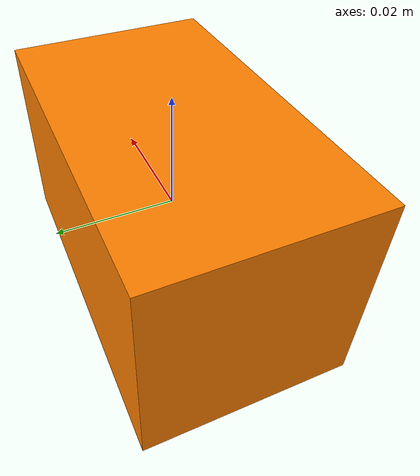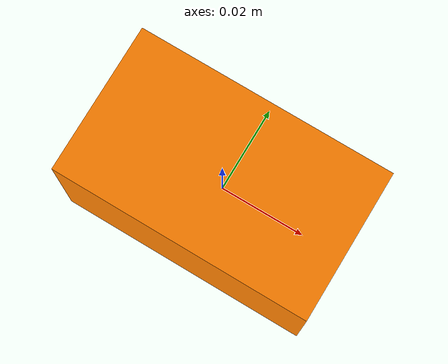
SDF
<?xml version="1.0" ?>
<sdf version='1.6'>
  <model name='Dubin'>
    <link name="DubinLink">
      <pose frame=''>0 0 0 0 0 0</pose>
      <inertial>
        <pose frame='DubinLink'>0 0 0 0 0 0</pose>
        <mass>1.0</mass>
        <inertia>
          <ixx>0.005</ixx>
          <ixy>0.</ixy>
          <ixz>0.0</ixz>
          <iyy>0.006</iyy>
          <izz>0.003</izz>
        </inertia>
      </inertial>
      <collision name='DubinLink_collision'>
        <pose frame=''>0 0 0 0 0 0</pose>
        <geometry>
          <box>
            <size>0.06 0.035 0.035</size>
          </box>
        </geometry>
      </collision>
      <visual name='DubinLink_visual'>
        <pose frame=''>0 0 0 0 0 0</pose>
        <geometry>
          <box>
            <size>0.06 0.035 0.035</size>
          </box>
        </geometry>
        <material>
          <ambient>1.0 0.5019607843137254902 0 1.0</ambient>
        </material>
      </visual>
      <gravity>0</gravity>
      <self_collide>0</self_collide>
      <sensor type="ray" name="lidar_sensor">
        <pose>0 0 0 0 0 0</pose>
        <visualize>true</visualize>
        <update_rate>20</update_rate>
        <ray>
          <scan>
            <horizontal>
              <samples>720</samples>
              <min_angle>-0.3</min_angle>
              <max_angle>0.3</max_angle>
            </horizontal>
          </scan>
          <range>
            <min>0.05</min>
            <max>3.0</max>
            <resolution>0.01</resolution>
          </range>
        </ray>
        <plugin name="gazebo_ros_laser" filename="libgazebo_ros_ray_sensor.so">
          <topicName>/scan</topicName>
          <frameName>lidar_frame</frameName>
        </plugin>
      </sensor>
    </link>
  </model>
</sdf>
